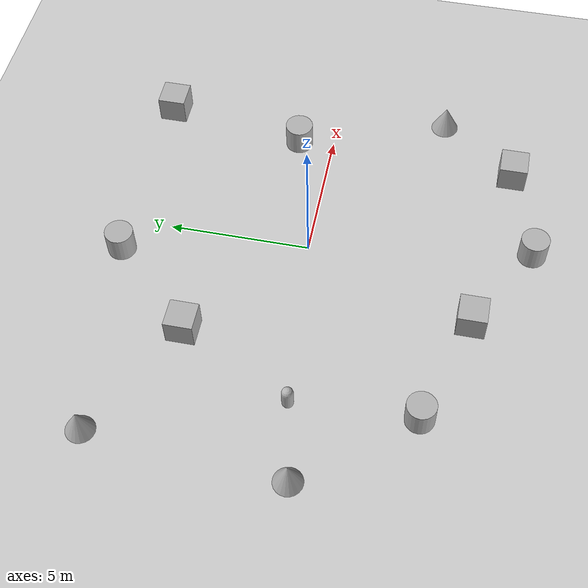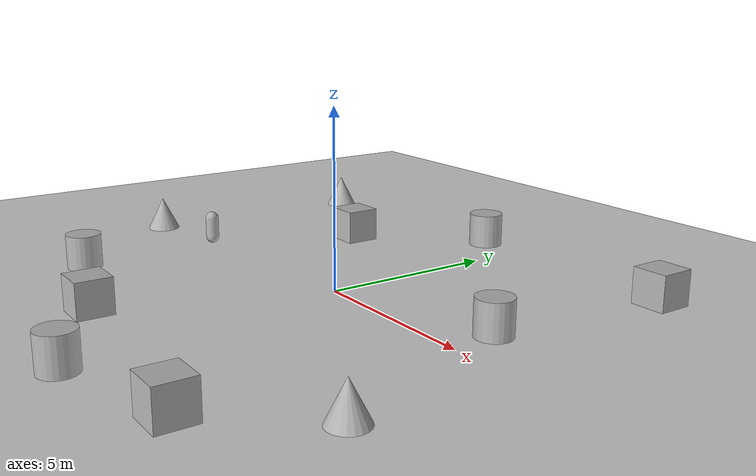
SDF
<sdf version='1.10'>
  <world name='empty'>
    <physics name='1ms' type='ignored'>
      <max_step_size>0.001</max_step_size>
      <real_time_factor>1</real_time_factor>
      <real_time_update_rate>1000</real_time_update_rate>
    </physics>
    <plugin name='gz::sim::systems::Physics' filename='gz-sim-physics-system'/>
    <plugin name='gz::sim::systems::UserCommands' filename='gz-sim-user-commands-system'/>
    <plugin name='gz::sim::systems::SceneBroadcaster' filename='gz-sim-scene-broadcaster-system'/>
    <plugin name='gz::sim::systems::Contact' filename='gz-sim-contact-system'/>
    <gravity>0 0 -9.8000000000000007</gravity>
    <magnetic_field>5.5644999999999998e-06 2.2875799999999999e-05 -4.2388400000000002e-05</magnetic_field>
    <atmosphere type='adiabatic'/>
    <scene>
      <ambient>0.400000006 0.400000006 0.400000006 1</ambient>
      <background>0.699999988 0.699999988 0.699999988 1</background>
      <shadows>true</shadows>
    </scene>
    <model name='ground_plane'>
      <static>true</static>
      <link name='link'>
        <collision name='collision'>
          <geometry>
            <plane>
              <normal>0 0 1</normal>
              <size>100 100</size>
            </plane>
          </geometry>
          <surface>
            <friction>
              <ode/>
            </friction>
            <bounce/>
            <contact/>
          </surface>
        </collision>
        <visual name='visual'>
          <geometry>
            <plane>
              <normal>0 0 1</normal>
              <size>100 100</size>
            </plane>
          </geometry>
          <material>
            <ambient>0.800000012 0.800000012 0.800000012 1</ambient>
            <diffuse>0.800000012 0.800000012 0.800000012 1</diffuse>
            <specular>0.800000012 0.800000012 0.800000012 1</specular>
          </material>
        </visual>
        <pose>0 0 0 0 0 0</pose>
        <inertial>
          <pose>0 0 0 0 0 0</pose>
          <mass>1</mass>
          <inertia>
            <ixx>1</ixx>
            <ixy>0</ixy>
            <ixz>0</ixz>
            <iyy>1</iyy>
            <iyz>0</iyz>
            <izz>1</izz>
          </inertia>
        </inertial>
        <enable_wind>false</enable_wind>
      </link>
      <pose>0 0 0 0 0 0</pose>
      <self_collide>false</self_collide>
    </model>
    <model name='box'>
      <pose>5.5894286916536018 6.3544884049254602 0.49999999990199806 6.2287739151293738e-22 9.3279666454713669e-22 -3.6315533669320137e-22</pose>
      <link name='box_link'>
        <inertial>
          <inertia>
            <ixx>0.16666</ixx>
            <ixy>0</ixy>
            <ixz>0</ixz>
            <iyy>0.16666</iyy>
            <iyz>0</iyz>
            <izz>0.16666</izz>
          </inertia>
          <mass>1</mass>
          <pose>0 0 0 0 0 0</pose>
        </inertial>
        <collision name='box_collision'>
          <geometry>
            <box>
              <size>1 1 1</size>
            </box>
          </geometry>
          <surface>
            <friction>
              <ode/>
            </friction>
            <bounce/>
            <contact/>
          </surface>
        </collision>
        <visual name='box_visual'>
          <geometry>
            <box>
              <size>1 1 1</size>
            </box>
          </geometry>
          <material>
            <ambient>0.300000012 0.300000012 0.300000012 1</ambient>
            <diffuse>0.699999988 0.699999988 0.699999988 1</diffuse>
            <specular>1 1 1 1</specular>
          </material>
        </visual>
        <pose>0 0 0 0 0 0</pose>
        <enable_wind>false</enable_wind>
      </link>
      <static>false</static>
      <self_collide>false</self_collide>
    </model>
    <model name='box_0'>
      <pose>4.5887850280838904 -6.8070545031201179 0.49999999990199806 6.2287739151293738e-22 9.3279666454713669e-22 -3.6315533669320137e-22</pose>
      <link name='box_link'>
        <inertial>
          <inertia>
            <ixx>0.16666</ixx>
            <ixy>0</ixy>
            <ixz>0</ixz>
            <iyy>0.16666</iyy>
            <iyz>0</iyz>
            <izz>0.16666</izz>
          </inertia>
          <mass>1</mass>
          <pose>0 0 0 0 0 0</pose>
        </inertial>
        <collision name='box_collision'>
          <geometry>
            <box>
              <size>1 1 1</size>
            </box>
          </geometry>
          <surface>
            <friction>
              <ode/>
            </friction>
            <bounce/>
            <contact/>
          </surface>
        </collision>
        <visual name='box_visual'>
          <geometry>
            <box>
              <size>1 1 1</size>
            </box>
          </geometry>
          <material>
            <ambient>0.300000012 0.300000012 0.300000012 1</ambient>
            <diffuse>0.699999988 0.699999988 0.699999988 1</diffuse>
            <specular>1 1 1 1</specular>
          </material>
        </visual>
        <pose>0 0 0 0 0 0</pose>
        <enable_wind>false</enable_wind>
      </link>
      <static>false</static>
      <self_collide>false</self_collide>
    </model>
    <model name='box_1'>
      <pose>-4.1596935908624157 3.4553966257400903 0.49999999990199806 6.2287739151293738e-22 9.3279666454713669e-22 -3.6315533669320137e-22</pose>
      <link name='box_link'>
        <inertial>
          <inertia>
            <ixx>0.16666</ixx>
            <ixy>0</ixy>
            <ixz>0</ixz>
            <iyy>0.16666</iyy>
            <iyz>0</iyz>
            <izz>0.16666</izz>
          </inertia>
          <mass>1</mass>
          <pose>0 0 0 0 0 0</pose>
        </inertial>
        <collision name='box_collision'>
          <geometry>
            <box>
              <size>1 1 1</size>
            </box>
          </geometry>
          <surface>
            <friction>
              <ode/>
            </friction>
            <bounce/>
            <contact/>
          </surface>
        </collision>
        <visual name='box_visual'>
          <geometry>
            <box>
              <size>1 1 1</size>
            </box>
          </geometry>
          <material>
            <ambient>0.300000012 0.300000012 0.300000012 1</ambient>
            <diffuse>0.699999988 0.699999988 0.699999988 1</diffuse>
            <specular>1 1 1 1</specular>
          </material>
        </visual>
        <pose>0 0 0 0 0 0</pose>
        <enable_wind>false</enable_wind>
      </link>
      <static>false</static>
      <self_collide>false</self_collide>
    </model>
    <model name='box_2'>
      <pose>-2.098045030429577 -6.0188182638182255 0.49999999990199806 6.2287739151293738e-22 9.3279666454713669e-22 -3.6315533669320137e-22</pose>
      <link name='box_link'>
        <inertial>
          <inertia>
            <ixx>0.16666</ixx>
            <ixy>0</ixy>
            <ixz>0</ixz>
            <iyy>0.16666</iyy>
            <iyz>0</iyz>
            <izz>0.16666</izz>
          </inertia>
          <mass>1</mass>
          <pose>0 0 0 0 0 0</pose>
        </inertial>
        <collision name='box_collision'>
          <geometry>
            <box>
              <size>1 1 1</size>
            </box>
          </geometry>
          <surface>
            <friction>
              <ode/>
            </friction>
            <bounce/>
            <contact/>
          </surface>
        </collision>
        <visual name='box_visual'>
          <geometry>
            <box>
              <size>1 1 1</size>
            </box>
          </geometry>
          <material>
            <ambient>0.300000012 0.300000012 0.300000012 1</ambient>
            <diffuse>0.699999988 0.699999988 0.699999988 1</diffuse>
            <specular>1 1 1 1</specular>
          </material>
        </visual>
        <pose>0 0 0 0 0 0</pose>
        <enable_wind>false</enable_wind>
      </link>
      <static>false</static>
      <self_collide>false</self_collide>
    </model>
    <model name='cylinder'>
      <pose>4.849065764223452 1.301547479847297 0.49999942638036005 -3.234197451796803e-19 1.6873891088410844e-19 -8.6718542870722761e-21</pose>
      <link name='cylinder_link'>
        <inertial>
          <inertia>
            <ixx>0.14580000000000001</ixx>
            <ixy>0</ixy>
            <ixz>0</ixz>
            <iyy>0.14580000000000001</iyy>
            <iyz>0</iyz>
            <izz>0.125</izz>
          </inertia>
          <mass>1</mass>
          <pose>0 0 0 0 0 0</pose>
        </inertial>
        <collision name='cylinder_collision'>
          <geometry>
            <cylinder>
              <radius>0.5</radius>
              <length>1</length>
            </cylinder>
          </geometry>
          <surface>
            <friction>
              <ode/>
            </friction>
            <bounce/>
            <contact/>
          </surface>
        </collision>
        <visual name='cylinder_visual'>
          <geometry>
            <cylinder>
              <radius>0.5</radius>
              <length>1</length>
            </cylinder>
          </geometry>
          <material>
            <ambient>0.300000012 0.300000012 0.300000012 1</ambient>
            <diffuse>0.699999988 0.699999988 0.699999988 1</diffuse>
            <specular>1 1 1 1</specular>
          </material>
        </visual>
        <pose>0 0 0 0 0 0</pose>
        <enable_wind>false</enable_wind>
      </link>
      <static>false</static>
      <self_collide>false</self_collide>
    </model>
    <model name='cylinder_0'>
      <pose>1.1419232346405686 -7.821728095094409 0.49999942638036005 2.6402521966221052e-19 3.329359840486923e-19 8.8426103357745432e-21</pose>
      <link name='cylinder_link'>
        <inertial>
          <inertia>
            <ixx>0.14580000000000001</ixx>
            <ixy>0</ixy>
            <ixz>0</ixz>
            <iyy>0.14580000000000001</iyy>
            <iyz>0</iyz>
            <izz>0.125</izz>
          </inertia>
          <mass>1</mass>
          <pose>0 0 0 0 0 0</pose>
        </inertial>
        <collision name='cylinder_collision'>
          <geometry>
            <cylinder>
              <radius>0.5</radius>
              <length>1</length>
            </cylinder>
          </geometry>
          <surface>
            <friction>
              <ode/>
            </friction>
            <bounce/>
            <contact/>
          </surface>
        </collision>
        <visual name='cylinder_visual'>
          <geometry>
            <cylinder>
              <radius>0.5</radius>
              <length>1</length>
            </cylinder>
          </geometry>
          <material>
            <ambient>0.300000012 0.300000012 0.300000012 1</ambient>
            <diffuse>0.699999988 0.699999988 0.699999988 1</diffuse>
            <specular>1 1 1 1</specular>
          </material>
        </visual>
        <pose>0 0 0 0 0 0</pose>
        <enable_wind>false</enable_wind>
      </link>
      <static>false</static>
      <self_collide>false</self_collide>
    </model>
    <model name='cylinder_1'>
      <pose>-5.9916297247377308 -4.8035849282983474 0.49999942638036005 -1.2325108630750125e-19 5.2332237750184956e-20 1.4519371047189128e-20</pose>
      <link name='cylinder_link'>
        <inertial>
          <inertia>
            <ixx>0.14580000000000001</ixx>
            <ixy>0</ixy>
            <ixz>0</ixz>
            <iyy>0.14580000000000001</iyy>
            <iyz>0</iyz>
            <izz>0.125</izz>
          </inertia>
          <mass>1</mass>
          <pose>0 0 0 0 0 0</pose>
        </inertial>
        <collision name='cylinder_collision'>
          <geometry>
            <cylinder>
              <radius>0.5</radius>
              <length>1</length>
            </cylinder>
          </geometry>
          <surface>
            <friction>
              <ode/>
            </friction>
            <bounce/>
            <contact/>
          </surface>
        </collision>
        <visual name='cylinder_visual'>
          <geometry>
            <cylinder>
              <radius>0.5</radius>
              <length>1</length>
            </cylinder>
          </geometry>
          <material>
            <ambient>0.300000012 0.300000012 0.300000012 1</ambient>
            <diffuse>0.699999988 0.699999988 0.699999988 1</diffuse>
            <specular>1 1 1 1</specular>
          </material>
        </visual>
        <pose>0 0 0 0 0 0</pose>
        <enable_wind>false</enable_wind>
      </link>
      <static>false</static>
      <self_collide>false</self_collide>
    </model>
    <model name='cylinder_2'>
      <pose>-1.2607789948470884 6.4899256913593222 0.49999942638036005 1.7878695869122041e-19 -9.7096515711216193e-20 8.5210264014226988e-21</pose>
      <link name='cylinder_link'>
        <inertial>
          <inertia>
            <ixx>0.14580000000000001</ixx>
            <ixy>0</ixy>
            <ixz>0</ixz>
            <iyy>0.14580000000000001</iyy>
            <iyz>0</iyz>
            <izz>0.125</izz>
          </inertia>
          <mass>1</mass>
          <pose>0 0 0 0 0 0</pose>
        </inertial>
        <collision name='cylinder_collision'>
          <geometry>
            <cylinder>
              <radius>0.5</radius>
              <length>1</length>
            </cylinder>
          </geometry>
          <surface>
            <friction>
              <ode/>
            </friction>
            <bounce/>
            <contact/>
          </surface>
        </collision>
        <visual name='cylinder_visual'>
          <geometry>
            <cylinder>
              <radius>0.5</radius>
              <length>1</length>
            </cylinder>
          </geometry>
          <material>
            <ambient>0.300000012 0.300000012 0.300000012 1</ambient>
            <diffuse>0.699999988 0.699999988 0.699999988 1</diffuse>
            <specular>1 1 1 1</specular>
          </material>
        </visual>
        <pose>0 0 0 0 0 0</pose>
        <enable_wind>false</enable_wind>
      </link>
      <static>false</static>
      <self_collide>false</self_collide>
    </model>
    <model name='capsule'>
      <pose>-6.2595785317039949 -0.5709626899557172 0.499999999902001 0 0 0</pose>
      <link name='capsule_link'>
        <inertial>
          <inertia>
            <ixx>0.074153999999999998</ixx>
            <ixy>0</ixy>
            <ixz>0</ixz>
            <iyy>0.074153999999999998</iyy>
            <iyz>0</iyz>
            <izz>0.018769000000000001</izz>
          </inertia>
          <mass>1</mass>
          <pose>0 0 0 0 0 0</pose>
        </inertial>
        <collision name='capsule_collision'>
          <geometry>
            <capsule>
              <radius>0.20000000000000001</radius>
              <length>0.59999999999999998</length>
            </capsule>
          </geometry>
          <surface>
            <friction>
              <ode/>
            </friction>
            <bounce/>
            <contact/>
          </surface>
        </collision>
        <visual name='capsule_visual'>
          <geometry>
            <capsule>
              <radius>0.20000000000000001</radius>
              <length>0.59999999999999998</length>
            </capsule>
          </geometry>
          <material>
            <ambient>0.300000012 0.300000012 0.300000012 1</ambient>
            <diffuse>0.699999988 0.699999988 0.699999988 1</diffuse>
            <specular>1 1 1 1</specular>
          </material>
        </visual>
        <pose>0 0 0 0 0 0</pose>
        <enable_wind>false</enable_wind>
      </link>
      <static>false</static>
      <self_collide>false</self_collide>
    </model>
    <model name='cone'>
      <pose>-8.3546134112281631 5.7117435524002271 0.5 0 0 0</pose>
      <link name='cone_link'>
        <inertial>
          <inertia>
            <ixx>0.074999999999999997</ixx>
            <ixy>0</ixy>
            <ixz>0</ixz>
            <iyy>0.074999999999999997</iyy>
            <iyz>0</iyz>
            <izz>0.074999999999999997</izz>
          </inertia>
          <mass>1</mass>
          <pose>0 0 0 0 0 0</pose>
        </inertial>
        <collision name='cone_collision'>
          <geometry>
            <cone>
              <radius>0.5</radius>
              <length>1</length>
            </cone>
          </geometry>
          <surface>
            <friction>
              <ode/>
            </friction>
            <bounce/>
            <contact/>
          </surface>
        </collision>
        <visual name='cone_visual'>
          <geometry>
            <cone>
              <radius>0.5</radius>
              <length>1</length>
            </cone>
          </geometry>
          <material>
            <ambient>0.300000012 0.300000012 0.300000012 1</ambient>
            <diffuse>0.699999988 0.699999988 0.699999988 1</diffuse>
            <specular>1 1 1 1</specular>
          </material>
        </visual>
        <pose>0 0 0 0 0 0</pose>
        <enable_wind>false</enable_wind>
      </link>
      <static>false</static>
      <self_collide>false</self_collide>
    </model>
    <model name='cone_0'>
      <pose>6.6916393047249407 -4.0550962129920318 0.5 0 0 0</pose>
      <link name='cone_link'>
        <inertial>
          <inertia>
            <ixx>0.074999999999999997</ixx>
            <ixy>0</ixy>
            <ixz>0</ixz>
            <iyy>0.074999999999999997</iyy>
            <iyz>0</iyz>
            <izz>0.074999999999999997</izz>
          </inertia>
          <mass>1</mass>
          <pose>0 0 0 0 0 0</pose>
        </inertial>
        <collision name='cone_collision'>
          <geometry>
            <cone>
              <radius>0.5</radius>
              <length>1</length>
            </cone>
          </geometry>
          <surface>
            <friction>
              <ode/>
            </friction>
            <bounce/>
            <contact/>
          </surface>
        </collision>
        <visual name='cone_visual'>
          <geometry>
            <cone>
              <radius>0.5</radius>
              <length>1</length>
            </cone>
          </geometry>
          <material>
            <ambient>0.300000012 0.300000012 0.300000012 1</ambient>
            <diffuse>0.699999988 0.699999988 0.699999988 1</diffuse>
            <specular>1 1 1 1</specular>
          </material>
        </visual>
        <pose>0 0 0 0 0 0</pose>
        <enable_wind>false</enable_wind>
      </link>
      <static>false</static>
      <self_collide>false</self_collide>
    </model>
    <model name='cone_1'>
      <pose>-8.8563514285855298 -1.1184917215844943 0.5 0 0 0</pose>
      <link name='cone_link'>
        <inertial>
          <inertia>
            <ixx>0.074999999999999997</ixx>
            <ixy>0</ixy>
            <ixz>0</ixz>
            <iyy>0.074999999999999997</iyy>
            <iyz>0</iyz>
            <izz>0.074999999999999997</izz>
          </inertia>
          <mass>1</mass>
          <pose>0 0 0 0 0 0</pose>
        </inertial>
        <collision name='cone_collision'>
          <geometry>
            <cone>
              <radius>0.5</radius>
              <length>1</length>
            </cone>
          </geometry>
          <surface>
            <friction>
              <ode/>
            </friction>
            <bounce/>
            <contact/>
          </surface>
        </collision>
        <visual name='cone_visual'>
          <geometry>
            <cone>
              <radius>0.5</radius>
              <length>1</length>
            </cone>
          </geometry>
          <material>
            <ambient>0.300000012 0.300000012 0.300000012 1</ambient>
            <diffuse>0.699999988 0.699999988 0.699999988 1</diffuse>
            <specular>1 1 1 1</specular>
          </material>
        </visual>
        <pose>0 0 0 0 0 0</pose>
        <enable_wind>false</enable_wind>
      </link>
      <static>false</static>
      <self_collide>false</self_collide>
    </model>
    <light name='sun' type='directional'>
      <pose>0 0 10 0 0 0</pose>
      <cast_shadows>true</cast_shadows>
      <intensity>1</intensity>
      <direction>-0.5 0.10000000000000001 -0.90000000000000002</direction>
      <diffuse>0.800000012 0.800000012 0.800000012 1</diffuse>
      <specular>0.200000003 0.200000003 0.200000003 1</specular>
      <attenuation>
        <range>1000</range>
        <linear>0.0099999997764825821</linear>
        <constant>0.89999997615814209</constant>
        <quadratic>0.0010000000474974513</quadratic>
      </attenuation>
      <spot>
        <inner_angle>0</inner_angle>
        <outer_angle>0</outer_angle>
        <falloff>0</falloff>
      </spot>
    </light>
  </world>
</sdf>
